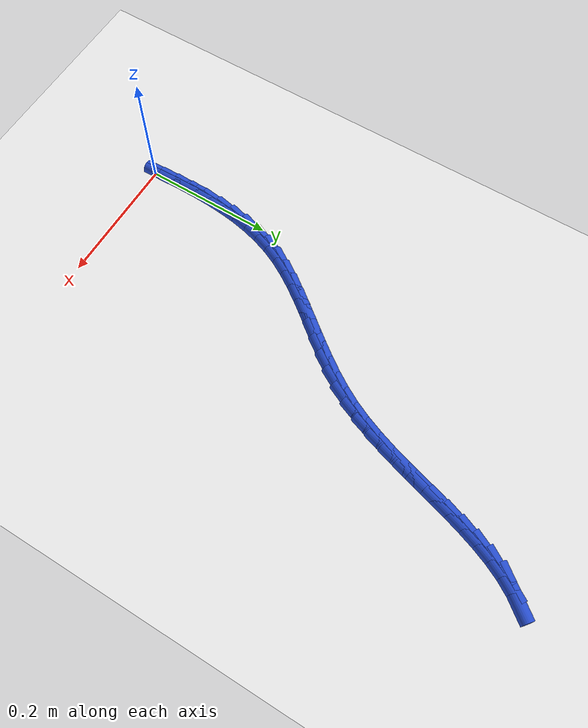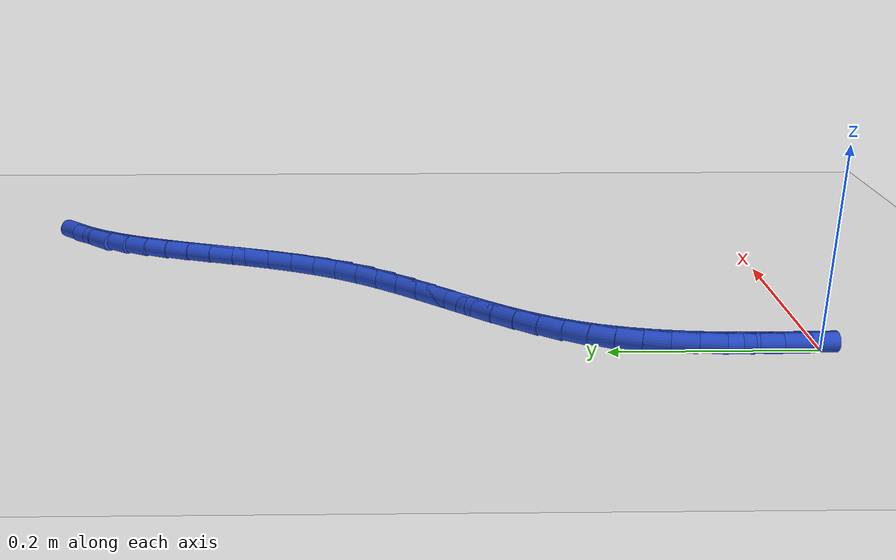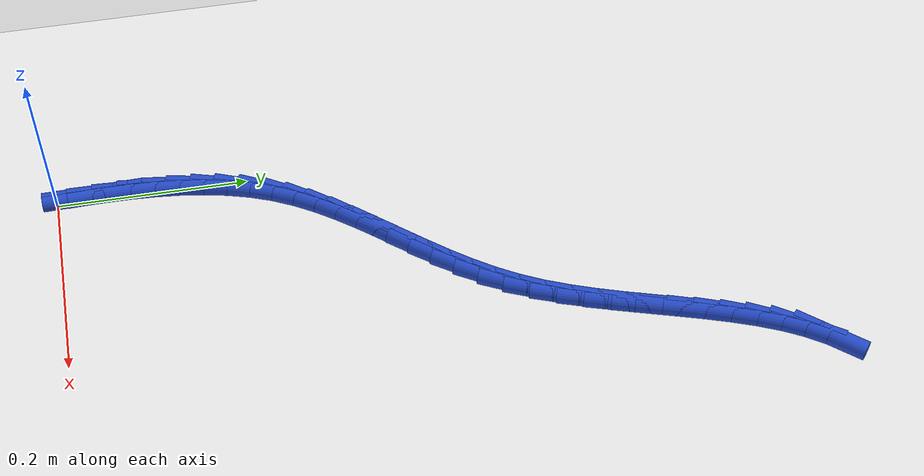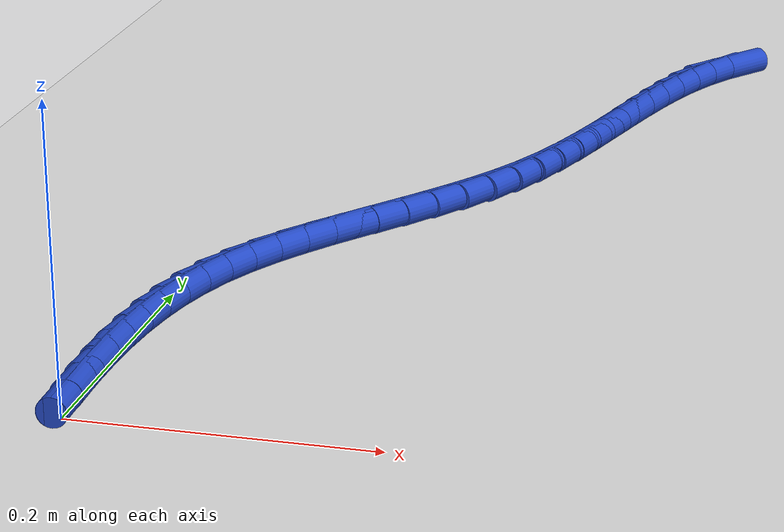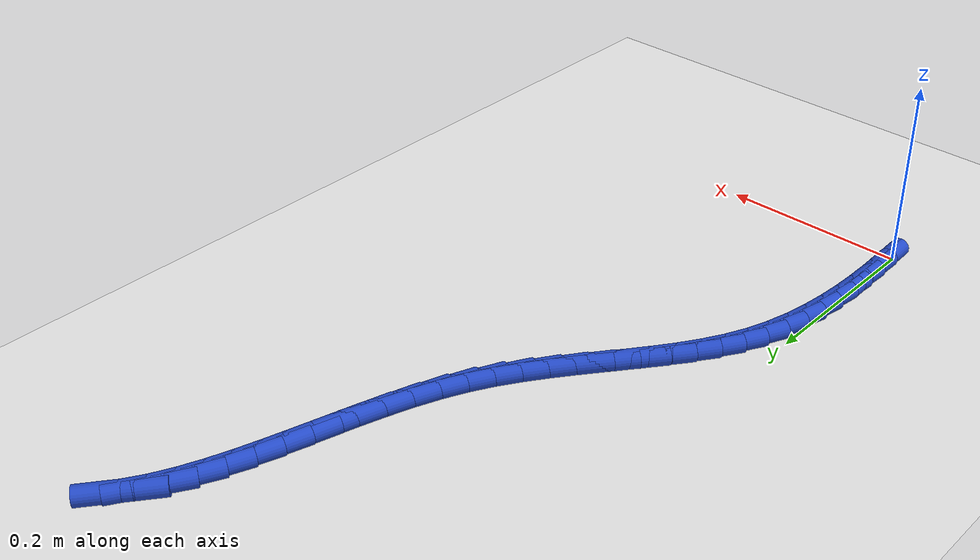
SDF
<sdf version="1.6">
 <world name="default">
  <model name="ground_plane">
   <static>1</static>
   <link name="link">
    <collision name="collision">
     <geometry><plane><normal>0 0 1</normal><size>100 100</size></plane></geometry>
     <surface><friction><ode><mu>100</mu><mu2>50</mu2></ode></friction></surface>
    </collision>
    <visual name="visual">
     <cast_shadows>0</cast_shadows>
     <geometry><plane><normal>0 0 1</normal><size>100 100</size></plane></geometry>
     <material>
      <script><uri>file://media/materials/scripts/gazebo.material</uri><name>Gazebo/WhiteGlow</name></script>
     </material>
    </visual>
   </link>
  </model>
  <model name="line">
   <link name="link_1">
    <pose>-0.001078734033683846 0.025923769754715248 0.01 0 1.57 -1.5508371262471419</pose>
    <collision name="collision">
     <geometry><cylinder><radius>0.01</radius><length>0.08</length></cylinder></geometry>
    </collision>
    <visual name="visual">
     <material>
      <script><name>Gazebo/Blue</name><uri>file://media/materials/scripts/gazebo.material</uri></script>
     </material>
     <geometry><cylinder><radius>0.01</radius><length>0.08</length></cylinder></geometry>
    </visual>
   </link>
   <link name="link_2">
    <pose>-0.0015996408604705913 0.05201888576601871 0.01 0 1.57 1.5625225211086227</pose>
    <collision name="collision">
     <geometry><cylinder><radius>0.01</radius><length>0.08</length></cylinder></geometry>
    </collision>
    <visual name="visual">
     <material>
      <script><name>Gazebo/Blue</name><uri>file://media/materials/scripts/gazebo.material</uri></script>
     </material>
     <geometry><cylinder><radius>0.01</radius><length>0.08</length></cylinder></geometry>
    </visual>
   </link>
   <link name="link_3">
    <pose>-0.0013835428001166047 0.07813662861202465 0.01 0 1.57 1.527260607950316</pose>
    <collision name="collision">
     <geometry><cylinder><radius>0.01</radius><length>0.08</length></cylinder></geometry>
    </collision>
    <visual name="visual">
     <material>
      <script><name>Gazebo/Blue</name><uri>file://media/materials/scripts/gazebo.material</uri></script>
     </material>
     <geometry><cylinder><radius>0.01</radius><length>0.08</length></cylinder></geometry>
    </visual>
   </link>
   <link name="link_4">
    <pose>-0.00025126217237826567 0.10412827887084732 0.01 0 1.57 1.4843901281129186</pose>
    <collision name="collision">
     <geometry><cylinder><radius>0.01</radius><length>0.08</length></cylinder></geometry>
    </collision>
    <visual name="visual">
     <material>
      <script><name>Gazebo/Blue</name><uri>file://media/materials/scripts/gazebo.material</uri></script>
     </material>
     <geometry><cylinder><radius>0.01</radius><length>0.08</length></cylinder></geometry>
    </visual>
   </link>
   <link name="link_5">
    <pose>0.001976378702988048 0.12984511712060098 0.01 0 1.57 1.433208479762104</pose>
    <collision name="collision">
     <geometry><cylinder><radius>0.01</radius><length>0.08</length></cylinder></geometry>
    </collision>
    <visual name="visual">
     <material>
      <script><name>Gazebo/Blue</name><uri>file://media/materials/scripts/gazebo.material</uri></script>
     </material>
     <geometry><cylinder><radius>0.01</radius><length>0.08</length></cylinder></geometry>
    </visual>
   </link>
   <link name="link_6">
    <pose>0.005478557506225959 0.15513842393939994 0.01 0 1.57 1.3729463833635678</pose>
    <collision name="collision">
     <geometry><cylinder><radius>0.01</radius><length>0.08</length></cylinder></geometry>
    </collision>
    <visual name="visual">
     <material>
      <script><name>Gazebo/Blue</name><uri>file://media/materials/scripts/gazebo.material</uri></script>
     </material>
     <geometry><cylinder><radius>0.01</radius><length>0.08</length></cylinder></geometry>
    </visual>
   </link>
   <link name="link_7">
    <pose>0.010434451917579086 0.17985947990535844 0.01 0 1.57 1.302865412017237</pose>
    <collision name="collision">
     <geometry><cylinder><radius>0.01</radius><length>0.08</length></cylinder></geometry>
    </collision>
    <visual name="visual">
     <material>
      <script><name>Gazebo/Blue</name><uri>file://media/materials/scripts/gazebo.material</uri></script>
     </material>
     <geometry><cylinder><radius>0.01</radius><length>0.08</length></cylinder></geometry>
    </visual>
   </link>
   <link name="link_8">
    <pose>0.017023239617291054 0.2038595655965908 0.01 0 1.57 1.2224146423385887</pose>
    <collision name="collision">
     <geometry><cylinder><radius>0.01</radius><length>0.08</length></cylinder></geometry>
    </collision>
    <visual name="visual">
     <material>
      <script><name>Gazebo/Blue</name><uri>file://media/materials/scripts/gazebo.material</uri></script>
     </material>
     <geometry><cylinder><radius>0.01</radius><length>0.08</length></cylinder></geometry>
    </visual>
   </link>
   <link name="link_9">
    <pose>0.025424098285605476 0.2269899615912112 0.01 0 1.57 1.1339320984130088</pose>
    <collision name="collision">
     <geometry><cylinder><radius>0.01</radius><length>0.08</length></cylinder></geometry>
    </collision>
    <visual name="visual">
     <material>
      <script><name>Gazebo/Blue</name><uri>file://media/materials/scripts/gazebo.material</uri></script>
     </material>
     <geometry><cylinder><radius>0.01</radius><length>0.08</length></cylinder></geometry>
    </visual>
   </link>
   <link name="link_10">
    <pose>0.03576604186182409 0.24913756643101184 0.01 0 1.57 1.0544029692733932</pose>
    <collision name="collision">
     <geometry><cylinder><radius>0.01</radius><length>0.08</length></cylinder></geometry>
    </collision>
    <visual name="visual">
     <material>
      <script><name>Gazebo/Blue</name><uri>file://media/materials/scripts/gazebo.material</uri></script>
     </material>
     <geometry><cylinder><radius>0.01</radius><length>0.08</length></cylinder></geometry>
    </visual>
   </link>
   <link name="link_11">
    <pose>0.04785078753249368 0.27042167049365284 0.01 0 1.57 0.9914801807485655</pose>
    <collision name="collision">
     <geometry><cylinder><radius>0.01</radius><length>0.08</length></cylinder></geometry>
    </collision>
    <visual name="visual">
     <material>
      <script><name>Gazebo/Blue</name><uri>file://media/materials/scripts/gazebo.material</uri></script>
     </material>
     <geometry><cylinder><radius>0.01</radius><length>0.08</length></cylinder></geometry>
    </visual>
   </link>
   <link name="link_12">
    <pose>0.06134878479980714 0.29105476868113006 0.01 0 1.57 0.945435414971339</pose>
    <collision name="collision">
     <geometry><cylinder><radius>0.01</radius><length>0.08</length></cylinder></geometry>
    </collision>
    <visual name="visual">
     <material>
      <script><name>Gazebo/Blue</name><uri>file://media/materials/scripts/gazebo.material</uri></script>
     </material>
     <geometry><cylinder><radius>0.01</radius><length>0.08</length></cylinder></geometry>
    </visual>
   </link>
   <link name="link_13">
    <pose>0.07593013106613243 0.31124960589830053 0.01 0 1.57 0.9159262423894816</pose>
    <collision name="collision">
     <geometry><cylinder><radius>0.01</radius><length>0.08</length></cylinder></geometry>
    </collision>
    <visual name="visual">
     <material>
      <script><name>Gazebo/Blue</name><uri>file://media/materials/scripts/gazebo.material</uri></script>
     </material>
     <geometry><cylinder><radius>0.01</radius><length>0.08</length></cylinder></geometry>
    </visual>
   </link>
   <link name="link_14">
    <pose>0.0912649237338376 0.33121892705002176 0.01 0 1.57 0.9024092016209881</pose>
    <collision name="collision">
     <geometry><cylinder><radius>0.01</radius><length>0.08</length></cylinder></geometry>
    </collision>
    <visual name="visual">
     <material>
      <script><name>Gazebo/Blue</name><uri>file://media/materials/scripts/gazebo.material</uri></script>
     </material>
     <geometry><cylinder><radius>0.01</radius><length>0.08</length></cylinder></geometry>
    </visual>
   </link>
   <link name="link_15">
    <pose>0.10702326020529049 0.3511754770411508 0.01 0 1.57 0.904376053428347</pose>
    <collision name="collision">
     <geometry><cylinder><radius>0.01</radius><length>0.08</length></cylinder></geometry>
    </collision>
    <visual name="visual">
     <material>
      <script><name>Gazebo/Blue</name><uri>file://media/materials/scripts/gazebo.material</uri></script>
     </material>
     <geometry><cylinder><radius>0.01</radius><length>0.08</length></cylinder></geometry>
    </visual>
   </link>
   <link name="link_16">
    <pose>0.12287523788285908 0.371332000776545 0.01 0 1.57 0.9214471286484537</pose>
    <collision name="collision">
     <geometry><cylinder><radius>0.01</radius><length>0.08</length></cylinder></geometry>
    </collision>
    <visual name="visual">
     <material>
      <script><name>Gazebo/Blue</name><uri>file://media/materials/scripts/gazebo.material</uri></script>
     </material>
     <geometry><cylinder><radius>0.01</radius><length>0.08</length></cylinder></geometry>
    </visual>
   </link>
   <link name="link_17">
    <pose>0.13849095416891138 0.3919012431610617 0.01 0 1.57 0.9533493094105094</pose>
    <collision name="collision">
     <geometry><cylinder><radius>0.01</radius><length>0.08</length></cylinder></geometry>
    </collision>
    <visual name="visual">
     <material>
      <script><name>Gazebo/Blue</name><uri>file://media/materials/scripts/gazebo.material</uri></script>
     </material>
     <geometry><cylinder><radius>0.01</radius><length>0.08</length></cylinder></geometry>
    </visual>
   </link>
   <link name="link_18">
    <pose>0.1535405064658153 0.4130959490995578 0.01 0 1.57 0.9997971107590262</pose>
    <collision name="collision">
     <geometry><cylinder><radius>0.01</radius><length>0.08</length></cylinder></geometry>
    </collision>
    <visual name="visual">
     <material>
      <script><name>Gazebo/Blue</name><uri>file://media/materials/scripts/gazebo.material</uri></script>
     </material>
     <geometry><cylinder><radius>0.01</radius><length>0.08</length></cylinder></geometry>
    </visual>
   </link>
   <link name="link_19">
    <pose>0.1676939921759389 0.43512886349689106 0.01 0 1.57 1.060289847884883</pose>
    <collision name="collision">
     <geometry><cylinder><radius>0.01</radius><length>0.08</length></cylinder></geometry>
    </collision>
    <visual name="visual">
     <material>
      <script><name>Gazebo/Blue</name><uri>file://media/materials/scripts/gazebo.material</uri></script>
     </material>
     <geometry><cylinder><radius>0.01</radius><length>0.08</length></cylinder></geometry>
    </visual>
   </link>
   <link name="link_20">
    <pose>0.18062150870164997 0.4582127312579184 0.01 0 1.57 1.1304237792960314</pose>
    <collision name="collision">
     <geometry><cylinder><radius>0.01</radius><length>0.08</length></cylinder></geometry>
    </collision>
    <visual name="visual">
     <material>
      <script><name>Gazebo/Blue</name><uri>file://media/materials/scripts/gazebo.material</uri></script>
     </material>
     <geometry><cylinder><radius>0.01</radius><length>0.08</length></cylinder></geometry>
    </visual>
   </link>
   <link name="link_21">
    <pose>0.19206698702457214 0.4825009542034054 0.01 0 1.57 1.1908884326159306</pose>
    <collision name="collision">
     <geometry><cylinder><radius>0.01</radius><length>0.08</length></cylinder></geometry>
    </collision>
    <visual name="visual">
     <material>
      <script><name>Gazebo/Blue</name><uri>file://media/materials/scripts/gazebo.material</uri></script>
     </material>
     <geometry><cylinder><radius>0.01</radius><length>0.08</length></cylinder></geometry>
    </visual>
   </link>
   <link name="link_22">
    <pose>0.20217802614665786 0.5078224895651227 0.01 0 1.57 1.2363188396179854</pose>
    <collision name="collision">
     <geometry><cylinder><radius>0.01</radius><length>0.08</length></cylinder></geometry>
    </collision>
    <visual name="visual">
     <material>
      <script><name>Gazebo/Blue</name><uri>file://media/materials/scripts/gazebo.material</uri></script>
     </material>
     <geometry><cylinder><radius>0.01</radius><length>0.08</length></cylinder></geometry>
    </visual>
   </link>
   <link name="link_23">
    <pose>0.21123948446984714 0.5338959735502072 0.01 0 1.57 1.2678477357379563</pose>
    <collision name="collision">
     <geometry><cylinder><radius>0.01</radius><length>0.08</length></cylinder></geometry>
    </collision>
    <visual name="visual">
     <material>
      <script><name>Gazebo/Blue</name><uri>file://media/materials/scripts/gazebo.material</uri></script>
     </material>
     <geometry><cylinder><radius>0.01</radius><length>0.08</length></cylinder></geometry>
    </visual>
   </link>
   <link name="link_24">
    <pose>0.21953633408978057 0.5604399509854932 0.01 0 1.57 1.286309996812792</pose>
    <collision name="collision">
     <geometry><cylinder><radius>0.01</radius><length>0.08</length></cylinder></geometry>
    </collision>
    <visual name="visual">
     <material>
      <script><name>Gazebo/Blue</name><uri>file://media/materials/scripts/gazebo.material</uri></script>
     </material>
     <geometry><cylinder><radius>0.01</radius><length>0.08</length></cylinder></geometry>
    </visual>
   </link>
   <link name="link_25">
    <pose>0.2273535471020989 0.5871729666978145 0.01 0 1.57 1.2921167434524472</pose>
    <collision name="collision">
     <geometry><cylinder><radius>0.01</radius><length>0.08</length></cylinder></geometry>
    </collision>
    <visual name="visual">
     <material>
      <script><name>Gazebo/Blue</name><uri>file://media/materials/scripts/gazebo.material</uri></script>
     </material>
     <geometry><cylinder><radius>0.01</radius><length>0.08</length></cylinder></geometry>
    </visual>
   </link>
   <link name="link_26">
    <pose>0.23497609560244256 0.6138135655140053 0.01 0 1.57 1.285188259427947</pose>
    <collision name="collision">
     <geometry><cylinder><radius>0.01</radius><length>0.08</length></cylinder></geometry>
    </collision>
    <visual name="visual">
     <material>
      <script><name>Gazebo/Blue</name><uri>file://media/materials/scripts/gazebo.material</uri></script>
     </material>
     <geometry><cylinder><radius>0.01</radius><length>0.08</length></cylinder></geometry>
    </visual>
   </link>
   <link name="link_27">
    <pose>0.24268895168645244 0.6400802922608996 0.01 0 1.57 1.2649059024992504</pose>
    <collision name="collision">
     <geometry><cylinder><radius>0.01</radius><length>0.08</length></cylinder></geometry>
    </collision>
    <visual name="visual">
     <material>
      <script><name>Gazebo/Blue</name><uri>file://media/materials/scripts/gazebo.material</uri></script>
     </material>
     <geometry><cylinder><radius>0.01</radius><length>0.08</length></cylinder></geometry>
    </visual>
   </link>
   <link name="link_28">
    <pose>0.25077708744976906 0.6656916917653314 0.01 0 1.57 1.230073746133724</pose>
    <collision name="collision">
     <geometry><cylinder><radius>0.01</radius><length>0.08</length></cylinder></geometry>
    </collision>
    <visual name="visual">
     <material>
      <script><name>Gazebo/Blue</name><uri>file://media/materials/scripts/gazebo.material</uri></script>
     </material>
     <geometry><cylinder><radius>0.01</radius><length>0.08</length></cylinder></geometry>
    </visual>
   </link>
   <link name="link_29">
    <pose>0.2595254749880331 0.6903663088541351 0.01 0 1.57 1.1789104156207686</pose>
    <collision name="collision">
     <geometry><cylinder><radius>0.01</radius><length>0.08</length></cylinder></geometry>
    </collision>
    <visual name="visual">
     <material>
      <script><name>Gazebo/Blue</name><uri>file://media/materials/scripts/gazebo.material</uri></script>
     </material>
     <geometry><cylinder><radius>0.01</radius><length>0.08</length></cylinder></geometry>
    </visual>
   </link>
   <link name="link_30">
    <pose>0.2692190863968851 0.713822688354144 0.01 0 1.57 1.1091377304011967</pose>
    <collision name="collision">
     <geometry><cylinder><radius>0.01</radius><length>0.08</length></cylinder></geometry>
    </collision>
    <visual name="visual">
     <material>
      <script><name>Gazebo/Blue</name><uri>file://media/materials/scripts/gazebo.material</uri></script>
     </material>
     <geometry><cylinder><radius>0.01</radius><length>0.08</length></cylinder></geometry>
    </visual>
   </link>
   <link name="link_31">
    <pose>0.2801428937719657 0.7357793750921923 0.01 0 1.57 1.0183055914703059</pose>
    <collision name="collision">
     <geometry><cylinder><radius>0.01</radius><length>0.08</length></cylinder></geometry>
    </collision>
    <visual name="visual">
     <material>
      <script><name>Gazebo/Blue</name><uri>file://media/materials/scripts/gazebo.material</uri></script>
     </material>
     <geometry><cylinder><radius>0.01</radius><length>0.08</length></cylinder></geometry>
    </visual>
   </link>
   <link name="link_32">
    <pose>0.29258186920891577 0.7559549138951146 0.01 0 1.57 0.9045703298850295</pose>
    <collision name="collision">
     <geometry><cylinder><radius>0.01</radius><length>0.08</length></cylinder></geometry>
    </collision>
    <visual name="visual">
     <material>
      <script><name>Gazebo/Blue</name><uri>file://media/materials/scripts/gazebo.material</uri></script>
     </material>
     <geometry><cylinder><radius>0.01</radius><length>0.08</length></cylinder></geometry>
    </visual>
   </link>
   <link name="link_271">
    <pose>-0.001107526974286438 0.025958708760583968 0.01 0 1.57 -1.5433747305110999</pose>
    <collision name="collision">
     <geometry><cylinder><radius>0.01</radius><length>0.08</length></cylinder></geometry>
    </collision>
    <visual name="visual">
     <material>
      <script><name>Gazebo/Blue</name><uri>file://media/materials/scripts/gazebo.material</uri></script>
     </material>
     <geometry><cylinder><radius>0.01</radius><length>0.08</length></cylinder></geometry>
    </visual>
   </link>
   <link name="link_272">
    <pose>-0.001829984385291218 0.05229839781296633 0.01 0 1.57 -1.535819384068073</pose>
    <collision name="collision">
     <geometry><cylinder><radius>0.01</radius><length>0.08</length></cylinder></geometry>
    </collision>
    <visual name="visual">
     <material>
      <script><name>Gazebo/Blue</name><uri>file://media/materials/scripts/gazebo.material</uri></script>
     </material>
     <geometry><cylinder><radius>0.01</radius><length>0.08</length></cylinder></geometry>
    </visual>
   </link>
  </model>
 </world>
</sdf>
